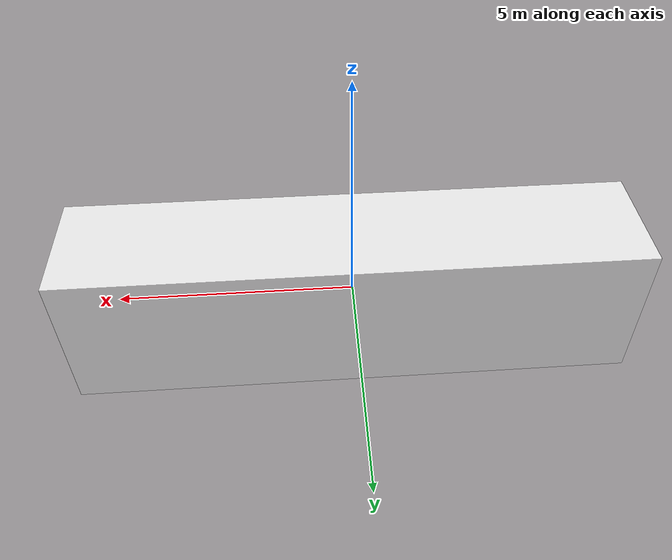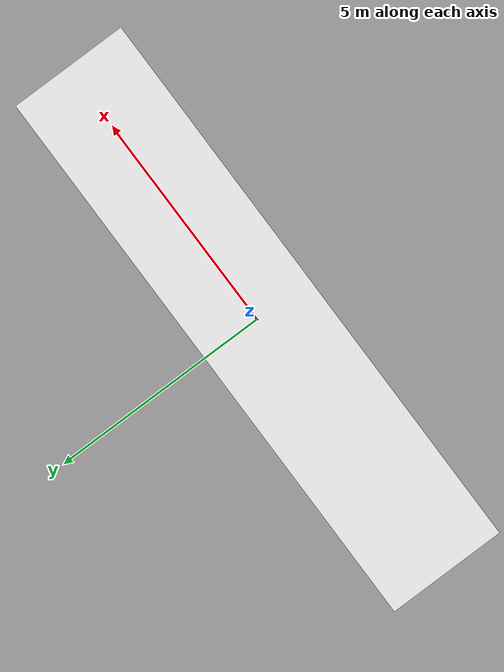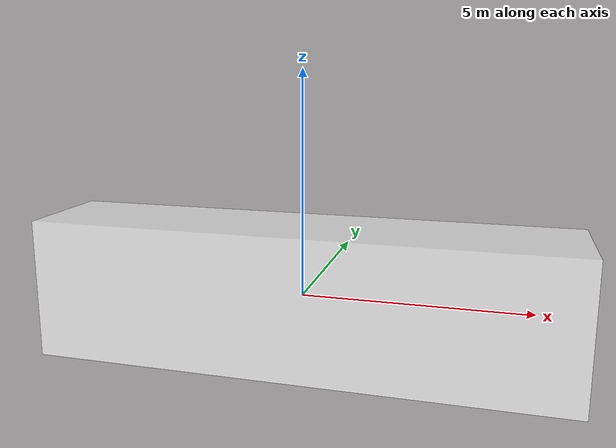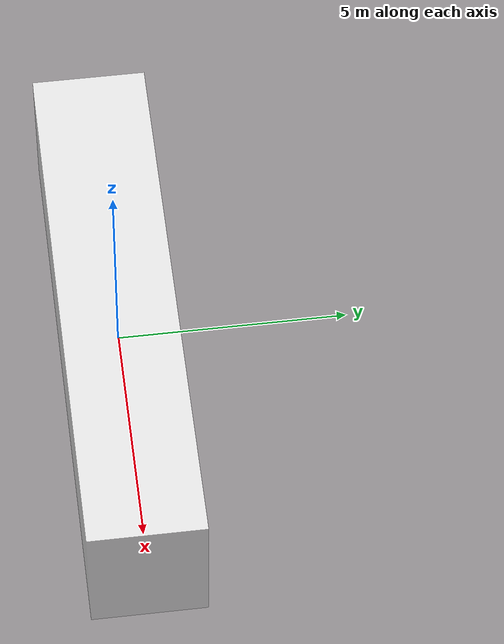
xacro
<?xml version="1.0"?>
<robot name="leodrive_bus" xmlns:xacro="http://ros.org/wiki/xacro">
  <xacro:arg name="config_dir" default="$(find leodrive_bus_vehicle_description)/config"/>

  <!-- Vehicle body (Isuzu bus platform) -->
  <link name="base_link">
    <visual>
      <origin xyz="0 0 0" rpy="0 0 0"/>
      <geometry>
        <box size="12.0 2.5 3.2"/>
      </geometry>
      <material name="white">
        <color rgba="1.0 1.0 1.0 0.8"/>
      </material>
    </visual>
    <collision>
      <origin xyz="0 0 0" rpy="0 0 0"/>
      <geometry>
        <box size="12.0 2.5 3.2"/>
      </geometry>
    </collision>
  </link>

  <!-- Sensor kit is included via sensors.xacro in leodrive_bus_sensor_kit_description -->
</robot>
